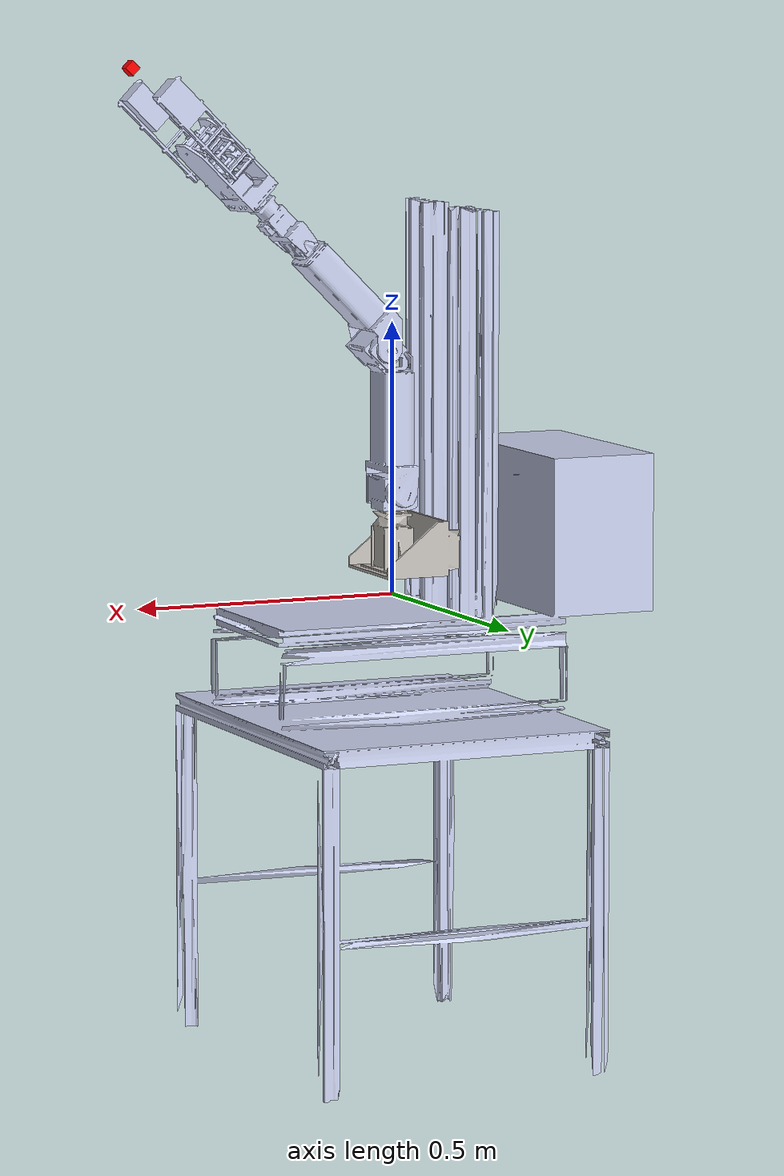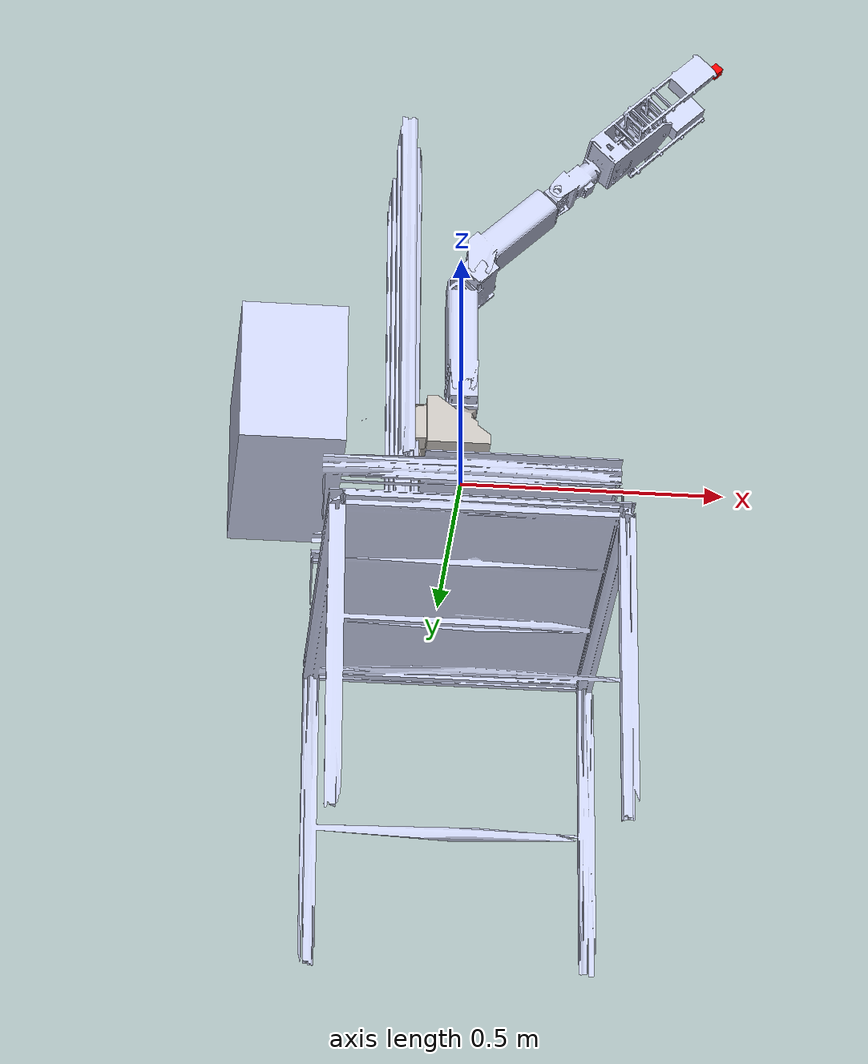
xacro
<?xml version="1.0" encoding="utf-8"?>
<robot
  name="Manipulator_station_urdf_2">
  <link
    name="Base_link">
    <inertial>
      <origin
        xyz="-0.0723308343849347 -5.76034482321908E-07 -0.138936926425514"
        rpy="0 0 0" />
      <mass
        value="10.0719247157871" />
      <inertia
        ixx="0.225372672640189"
        ixy="-5.47722770076954E-09"
        ixz="6.39304001370768E-06"
        iyy="0.215329726186438"
        iyz="-1.29340124552014E-07"
        izz="0.191427829854737" />
    </inertial>
    <visual>
      <origin
        xyz="0 0 0"
        rpy="0 0 0" />
      <geometry>
        <mesh
          filename="file://$(find mani_p_description)/meshes/table_visual.STL" />
      </geometry>
      <material
        name="">
        <color
          rgba="0.792156862745098 0.819607843137255 0.933333333333333 1" />
      </material>
    </visual>
    <collision>
      <origin
        xyz="0.02 0 0.035"
        rpy="0 0 0" />
      <geometry>
        <mesh
          filename="file://$(find mani_p_description)/meshes/table_collision.STL" />
      </geometry>
    </collision>
  </link>
  <link
    name="Base_arm">
    <inertial>
      <origin
        xyz="-0.0413175046626831 -0.0208972801523338 0.0320669876730205"
        rpy="0 0 0" />
      <mass
        value="4.1228447557393" />
      <inertia
        ixx="0.0113726436801867"
        ixy="-0.000168232670470485"
        ixz="0.00126187574890212"
        iyy="0.00575937558728693"
        iyz="0.000203632637247424"
        izz="0.01188198101123" />
    </inertial>
    <visual>
      <origin
        xyz="0 0 0"
        rpy="0 0 0" />
      <geometry>
        <mesh
          filename="file://$(find mani_p_description)/meshes/Base_arm_visual.stl" />
      </geometry>
      <material
        name="">
        <color
          rgba="0.776470588235294 0.756862745098039 0.737254901960784 1" />
      </material>
    </visual>
    <collision>
      <origin
        xyz="0 0 0"
        rpy="0 0 0" />
      <geometry>
        <mesh
          filename="file://$(find mani_p_description)/meshes/base_collision.STL" />
      </geometry>
    </collision>
  </link>
  <joint
    name="Base_arm_J0"
    type="fixed">
    <origin
      xyz="0 0 0.04"
      rpy="0 0 0" />
    <parent
      link="Base_link" />
    <child
      link="Base_arm" />
    <axis
      xyz="0 0 -1" />
    <limit
      lower="-0.7"
      upper="0"
      effort="200"
      velocity="3" />
  </joint>
  <link
    name="L1">
    <inertial>
      <origin
        xyz="-1.10021436405816E-11 7.32518596352344E-05 0.0316911255153076"
        rpy="0 0 0" />
      <mass
        value="0.29717061581658" />
      <inertia
        ixx="0.000303886041407238"
        ixy="6.99241113621864E-15"
        ixz="4.48809908102748E-15"
        iyy="0.000133630920461156"
        iyz="3.51430414313121E-06"
        izz="0.000309461173077348" />
    </inertial>
    <visual>
      <origin
        xyz="0 0 0"
        rpy="0 0 0" />
      <geometry>
        <mesh
          filename="file://$(find mani_p_description)/meshes/L1_visual.stl" />
      </geometry>
      <material
        name="">
        <color
          rgba="0.792156862745098 0.819607843137255 0.933333333333333 1" />
      </material>
    </visual>
    <collision>
      <origin
        xyz="0 0 0"
        rpy="0 0 0" />
      <geometry>
        <mesh
          filename="file://$(find mani_p_description)/meshes/L1.STL" />
      </geometry>
    </collision>
  </link>
  <joint
    name="J1"
    type="revolute">
    <origin
      xyz="0 0 0.116000000000001"
      rpy="0 0 3.14159265358979" />
    <parent
      link="Base_arm" />
    <child
      link="L1" />
    <axis
      xyz="0 0 -1" />
    <limit
      lower="-1.57"
      upper="1.57"
      effort="200"
      velocity="3" />
  </joint>
  <link
    name="L2">
    <inertial>
      <origin
        xyz="0.20185150893891 0.0161645619972203 -7.55770843141323E-05"
        rpy="0 0 0" />
      <mass
        value="0.524148568163614" />
      <inertia
        ixx="0.000499774464110963"
        ixy="3.40054540308558E-06"
        ixz="-2.50463813782652E-06"
        iyy="0.000697225471781578"
        iyz="-2.48498255392067E-06"
        izz="0.000526429291456387" />
    </inertial>
    <visual>
      <origin
        xyz="0 0 0"
        rpy="0 0 0" />
      <geometry>
        <mesh
          filename="file://$(find mani_p_description)/meshes/L2_visual.stl" />
      </geometry>
      <material
        name="">
        <color
          rgba="0.792156862745098 0.819607843137255 0.933333333333333 1" />
      </material>
    </visual>
    <collision>
      <origin
        xyz="0 0 0"
        rpy="0 0 0" />
      <geometry>
        <mesh
          filename="file://$(find mani_p_description)/meshes/L2.STL" />
      </geometry>
    </collision>
  </link>
  <joint
    name="J2"
    type="revolute">
    <origin
      xyz="0 0 0.0330000000008923"
      rpy="1.5707963267949 -1.5707963267949 0" />
    <parent
      link="L1" />
    <child
      link="L2" />
    <axis
      xyz="0 0 -1" />
    <limit
      lower="-1.57"
      upper="1.57"
      effort="200"
      velocity="3" />
  </joint>
  <link
    name="L3">
    <inertial>
      <origin
        xyz="0.126152886971805 -0.0298818698825802 -0.000208214870130147"
        rpy="0 0 0" />
      <mass
        value="0.481103074710301" />
      <inertia
        ixx="0.000303413270297186"
        ixy="4.74930894283668E-06"
        ixz="4.09553375298929E-08"
        iyy="0.000668879602866701"
        iyz="-4.78878066581936E-08"
        izz="0.000667938888460889" />
    </inertial>
    <visual>
      <origin
        xyz="0 0 0"
        rpy="0 0 0" />
      <geometry>
        <mesh
          filename="file://$(find mani_p_description)/meshes/L3_visual.stl" />
      </geometry>
      <material
        name="">
        <color
          rgba="0.792156862745098 0.819607843137255 0.933333333333333 1" />
      </material>
    </visual>
    <collision>
      <origin
        xyz="0 0 0"
        rpy="0 0 0" />
      <geometry>
        <mesh
          filename="file://$(find mani_p_description)/meshes/L3.STL" />
      </geometry>
    </collision>
  </link>
  <joint
    name="J3"
    type="revolute">
    <origin
      xyz="0.264000000000014 0.0299999999999664 0"
      rpy="0 0 0.7854" />
    <parent
      link="L2" />
    <child
      link="L3" />
    <axis
      xyz="0 0 -1" />
    <limit
      lower="-2.3562"
      upper="1.57"
      effort="200"
      velocity="3" />
  </joint>
  <link
    name="L4">
    <inertial>
      <origin
        xyz="0.000100097952944411 -0.00166222902026096 -0.0538849440312941"
        rpy="0 0 0" />
      <mass
        value="0.0852756037730973" />
      <inertia
        ixx="3.19354778364782E-05"
        ixy="1.01420009491847E-06"
        ixz="2.04206635751293E-11"
        iyy="1.50843843290278E-05"
        iyz="-2.23825574257021E-11"
        izz="3.23539402730483E-05" />
    </inertial>
    <visual>
      <origin
        xyz="0 0 0"
        rpy="0 0 0" />
      <geometry>
        <mesh
          filename="file://$(find mani_p_description)/meshes/L4_visual.stl" />
      </geometry>
      <material
        name="">
        <color
          rgba="0.792156862745098 0.819607843137255 0.933333333333333 1" />
      </material>
    </visual>
    <collision>
      <origin
        xyz="0 0 0"
        rpy="0 0 0" />
      <geometry>
        <mesh
          filename="file://$(find mani_p_description)/meshes/L4.STL" />
      </geometry>
    </collision>
  </link>
  <joint
    name="J4"
    type="revolute">
    <origin
      xyz="0.294599574521192 -0.0300010233346771 0"
      rpy="1.5707963267949 0 1.5707963267949" />
    <parent
      link="L3" />
    <child
      link="L4" />
    <axis
      xyz="0 0 -1" />
    <limit
      lower="-1.57"
      upper="1.57"
      effort="200"
      velocity="3" />
  </joint>
  <link
    name="L5">
    <inertial>
      <origin
        xyz="0.0648173973448019 -0.000207323517899316 0.000713506973517346"
        rpy="0 0 0" />
      <mass
        value="0.138634418013041" />
      <inertia
        ixx="4.40601102397039E-05"
        ixy="-2.23466572762377E-07"
        ixz="1.74333782378955E-08"
        iyy="6.66828144588062E-05"
        iyz="1.71937506116129E-10"
        izz="6.22589621626479E-05" />
    </inertial>
    <visual>
      <origin
        xyz="0 0 0"
        rpy="0 0 0" />
      <geometry>
        <mesh
          filename="file://$(find mani_p_description)/meshes/L5_visual.stl" />
      </geometry>
      <material
        name="">
        <color
          rgba="0.792156862745098 0.819607843137255 0.933333333333333 1" />
      </material>
    </visual>
    <collision>
      <origin
        xyz="0 0 0"
        rpy="0 0 0" />
      <geometry>
        <mesh
          filename="file://$(find mani_p_description)/meshes/L5.STL" />
      </geometry>
    </collision>
  </link>
  <joint
    name="J5"
    type="revolute">
    <origin
      xyz="0.000180609076408655 -0.00300457659950193 -0.0491995745209299"
      rpy="1.63069405070014 -1.5707963267949 0" />
    <parent
      link="L4" />
    <child
      link="L5" />
    <axis
      xyz="0 0 -1" />
    <limit
      lower="-1.57"
      upper="1.57"
      effort="200"
      velocity="3" />
  </joint>

  <link
    name="palm_link">
    <inertial>
      <origin
        xyz="-0.00226453024192438 -0.0010248009627208 0.0584194430678014"
        rpy="0 0 0" />
      <mass
        value="0.289701061638163" />
      <inertia
        ixx="0.000485715302932963"
        ixy="8.80599267937846E-07"
        ixz="2.55613195626725E-07"
        iyy="0.000355003529337741"
        iyz="2.52975039528034E-06"
        izz="0.000204460007961112" />
    </inertial>
    <visual>
      <origin
        xyz="0 0 0"
        rpy="0 0 0" />
      <geometry>
        <mesh
          filename="file://$(find mani_p_description)/meshes/palm_link_visual.stl" />
      </geometry>
      <material
        name="">
        <color
          rgba="0.792156862745098 0.819607843137255 0.933333333333333 1" />
      </material>
    </visual>
    <collision>
      <origin
        xyz="0 0 0"
        rpy="0 0 0" />
      <geometry>
        <mesh
          filename="file://$(find mani_p_description)/meshes/palm_link.STL" />
      </geometry>
    </collision>
  </link>
  <joint
    name="palm_joint"
    type="revolute">
    <origin
      xyz="0.122 0 0"
      rpy="1.5707963267949 0 1.5707963267949" />
    <parent
      link="L5" />
    <child
      link="palm_link" />
    <axis
      xyz="0 0 1" />
    <limit
      lower="-1.517"
      upper="1.517"
      effort="0"
      velocity="0" />
  </joint>

  <link
    name="finger_bottom_r">
    <inertial>
      <origin
        xyz="-1.57504804709774E-06 0.0103477687962485 -0.0179072505006844"
        rpy="0 0 0" />
      <mass
        value="0.0390904842532838" />
      <inertia
        ixx="1.11750119733812E-05"
        ixy="2.00381580074309E-10"
        ixz="1.53980568888076E-15"
        iyy="4.24858636291947E-06"
        iyz="7.33897309644584E-11"
        izz="1.22231032107977E-05" />
    </inertial>
    <visual>
      <origin
        xyz="0 0 0"
        rpy="0 0 0" />
      <geometry>
        <mesh
          filename="file://$(find mani_p_description)/meshes/finger_bottom_r_visual.stl" />
      </geometry>
      <material
        name="">
        <color
          rgba="0.792156862745098 0.819607843137255 0.933333333333333 1" />
      </material>
    </visual>
  </link>
  <joint
    name="finger_bottom_joint_r"
    type="continuous">
    <origin
      xyz="0.0214999999999949 -0.0224507912842468 0.0905685556678659"
      rpy="-1.57079632679332 -1.51256983859285 -1.57079632679648" />
    <parent
      link="palm_link" />
    <child
      link="finger_bottom_r" />
    <axis
      xyz="0 0 -1" />
    <limit
      lower="0"
      upper="1.047"
      effort="0"
      velocity="0" />
  <mimic joint="finger_middle_joint_l" multiplier="-1" offset="0" />
  </joint>

  <link
    name="finger_link_br">
    <inertial>
      <origin
        xyz="-0.0105427929870295 0.153621112125587 0"
        rpy="0 0 0" />
      <mass
        value="0.149391152983794" />
      <inertia
        ixx="0.000157706124922853"
        ixy="4.11678888016498E-08"
        ixz="-7.7749176533443E-21"
        iyy="2.98941844520473E-05"
        iyz="7.09953835937379E-20"
        izz="0.000144295322039152" />
    </inertial>
    <visual>
      <origin
        xyz="0 0 0"
        rpy="0 0 0" />
      <geometry>
        <mesh
          filename="file://$(find mani_p_description)/meshes/finger_link_br.STL" />
      </geometry>
      <material
        name="">
        <color
          rgba="0.792156862745098 0.819607843137255 0.933333333333333 1" />
      </material>
    </visual>
    <collision>
      <origin
        xyz="0 0 0"
        rpy="0 0 0" />
      <geometry>
        <mesh
          filename="file://$(find mani_p_description)/meshes/finger_link_br.STL" />
      </geometry>
    </collision>
  </link>
  <joint
    name="finger_joint_br"
    type="continuous">
    <origin
      xyz="0 0.0719999999999685 -0.0275000000000003"
      rpy="3.1415926535897 0 1.51256983859285" />
    <parent
      link="finger_bottom_r" />
    <child
      link="finger_link_br" />
    <axis
      xyz="0 0 -1" />
  <mimic joint="finger_middle_joint_l" multiplier="-1" offset="0" />
  </joint>
  <link
    name="finger_bottom_l">
    <inertial>
      <origin
        xyz="-1.57429047786817E-06 0.0103477684253001 -0.0179072503770971"
        rpy="0 0 0" />
      <mass
        value="0.0390904840939087" />
      <inertia
        ixx="1.11750126407243E-05"
        ixy="2.00957003326503E-10"
        ixz="1.70849667176199E-14"
        iyy="4.24858623031579E-06"
        iyz="7.34108370994094E-11"
        izz="1.22231037404869E-05" />
    </inertial>
    <visual>
      <origin
        xyz="0 0 0"
        rpy="0 0 0" />
      <geometry>
        <mesh
          filename="file://$(find mani_p_description)/meshes/finger_bottom_l_visual.stl" />
      </geometry>
      <material
        name="">
        <color
          rgba="0.792156862745098 0.819607843137255 0.933333333333333 1" />
      </material>
    </visual>
  </link>
  <joint
    name="finger_bottom_joint_l"
    type="continuous">
    <origin
      xyz="0.0215000000000003 0.0225492087158531 0.0905685556674948"
      rpy="-1.570796326795 1.35374340392809 -1.570796326795" />
    <parent
      link="palm_link" />
    <child
      link="finger_bottom_l" />
    <axis
      xyz="0 0 -1" />
    <limit
      lower="-1.047"
      upper="0"
      effort="0"
      velocity="0" />
  <mimic joint="finger_middle_joint_l" multiplier="1" offset="0" />
  </joint>
  <link
    name="finger_link_bl">
    <inertial>
      <origin
        xyz="0.0105427929870561 0.153621112125734 1.37251321419285E-14"
        rpy="0 0 0" />
      <mass
        value="0.149391152983795" />
      <inertia
        ixx="0.000157706124922853"
        ixy="-4.1167888803679E-08"
        ixz="6.17283471983355E-20"
        iyy="2.98941844520473E-05"
        iyz="1.14579999242045E-19"
        izz="0.000144295322039152" />
    </inertial>
    <visual>
      <origin
        xyz="0 0 0"
        rpy="0 0 0" />
      <geometry>
        <mesh
          filename="file://$(find mani_p_description)/meshes/finger_link_bl.STL" />
      </geometry>
      <material
        name="">
        <color
          rgba="0.792156862745098 0.819607843137255 0.933333333333333 1" />
      </material>
    </visual>
    <collision>
      <origin
        xyz="0 0 0"
        rpy="0 0 0" />
      <geometry>
        <mesh
          filename="file://$(find mani_p_description)/meshes/finger_link_bl.STL" />
      </geometry>
    </collision>
  </link>
  <joint
    name="finger_joint_bl"
    type="continuous">
    <origin
      xyz="0 0.0719999999999986 -0.0274999999999848"
      rpy="-3.14159265358977 0 -1.35374340392809" />
    <parent
      link="finger_bottom_l" />
    <child
      link="finger_link_bl" />
    <axis
      xyz="0 0 -1" />
  <mimic joint="finger_middle_joint_l" multiplier="1" offset="0" />
  </joint>
  <link
    name="finger_middle_r">
    <inertial>
      <origin
        xyz="3.07531777821168E-14 0.0294314905526618 0.00116964140455819"
        rpy="0 0 0" />
      <mass
        value="0.0144050851692265" />
      <inertia
        ixx="6.19314750464424E-06"
        ixy="-1.55300843901116E-17"
        ixz="3.89228835506857E-20"
        iyy="1.57457222917256E-06"
        iyz="-8.62913815699304E-23"
        izz="4.8529856244746E-06" />
    </inertial>
    <visual>
      <origin
        xyz="0 0 0"
        rpy="0 0 0" />
      <geometry>
        <mesh
          filename="file://$(find mani_p_description)/meshes/finger_middle_r.STL" />
      </geometry>
      <material
        name="">
        <color
          rgba="0.792156862745098 0.819607843137255 0.933333333333333 1" />
      </material>
    </visual>
  </link>
  <joint
    name="finger_middle_joint_r"
    type="continuous">
    <origin
      xyz="-0.00599999999999851 -0.0224507912841861 0.15056855566751"
      rpy="-1.57079632679476 -1.35374340393146 -1.57079632679504" />
    <parent
      link="palm_link" />
    <child
      link="finger_middle_r" />
    <axis
      xyz="0 0 -1" />
  <mimic joint="finger_middle_joint_l" multiplier="-1" offset="0" />
  </joint>
  <link
    name="finger_middle_l">
    <inertial>
      <origin
        xyz="-4.38538094726937E-14 0.0294314905532609 0.00116964140455926"
        rpy="0 0 0" />
      <mass
        value="0.0144050851692265" />
      <inertia
        ixx="6.19314750464424E-06"
        ixy="5.11668780634681E-18"
        ixz="2.33758556857066E-20"
        iyy="1.57457222917255E-06"
        iyz="5.36483282785332E-21"
        izz="4.85298562447461E-06" />
    </inertial>
    <visual>
      <origin
        xyz="0 0 0"
        rpy="0 0 0" />
      <geometry>
        <mesh
          filename="file://$(find mani_p_description)/meshes/finger_middle_l.STL" />
      </geometry>
      <material
        name="">
        <color
          rgba="0.792156862745098 0.819607843137255 0.933333333333333 1" />
      </material>
    </visual>
  </link>
  <joint
    name="finger_middle_joint_l"
    type="revolute">
    <origin
      xyz="-0.00599999999999951 0.0225492087158556 0.150568555667489"
      rpy="-1.57079632679497 1.35374340393137 -1.57079632679498" />
    <parent
      link="palm_link" />
    <child
      link="finger_middle_l" />
    <axis
      xyz="0 0 -1" />
    <limit lower="-1.57" upper="0.45099" effort="10.0" velocity="1.0" />
  </joint>
  <link name="tcp_link">
    <inertial>
      <origin xyz="0 0 0" rpy="0 0 0" />
      <mass value="0.001" />
      <inertia ixx="0.000001" ixy="0" ixz="0" iyy="0.000001" iyz="0" izz="0.000001" />
    </inertial>
    <visual>
      <origin xyz="0 0 0" rpy="0 0 0" />
      <geometry>
        <box size="0.02 0.02 0.02" />
      </geometry>
      <material name="red">
        <color rgba="1 0 0 1" />
      </material>
    </visual>
  </link>
  <joint name="tcp_joint" type="fixed">
    <origin xyz="0 0 0.335" rpy="0 0 0" />
    <parent link="palm_link" />
    <child link="tcp_link" />
  </joint>
</robot>
